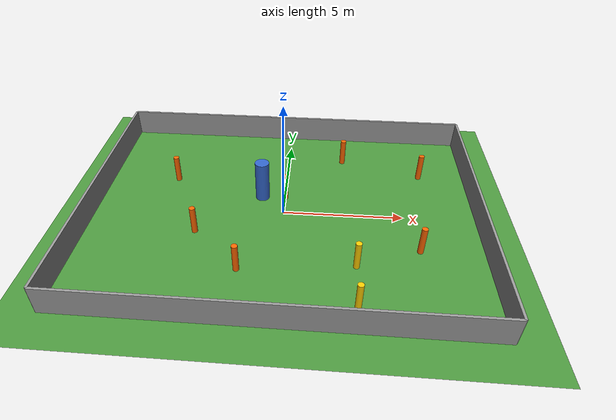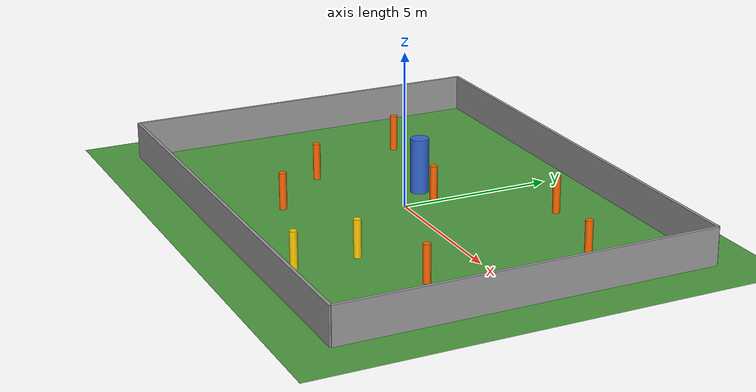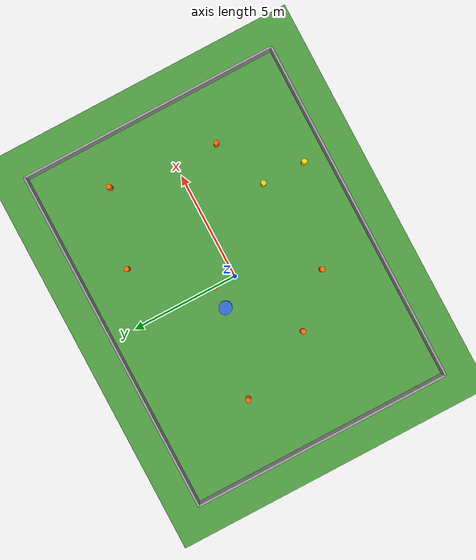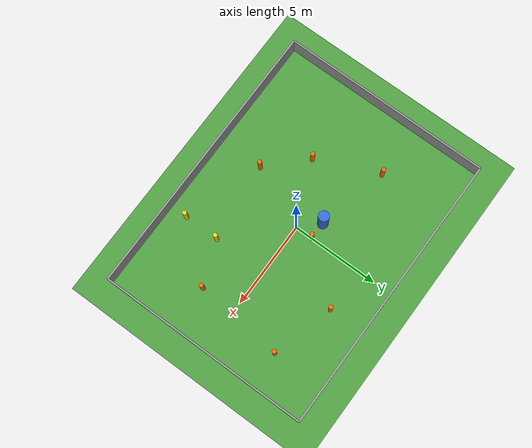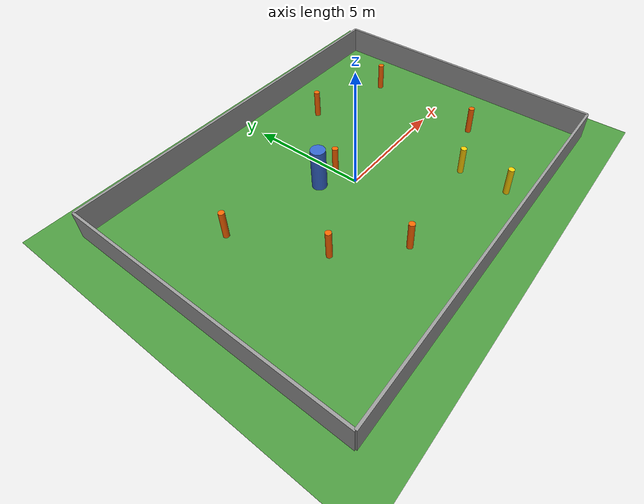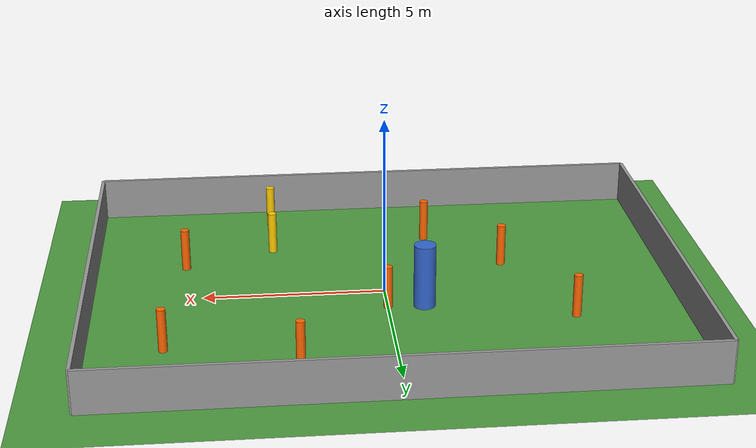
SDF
<?xml version="1.0"?>
<sdf version="1.6">
  <world name="test_small">

    <!-- Physics -->
    <physics type="ode">
      <real_time_update_rate>1000</real_time_update_rate>
      <max_step_size>0.002</max_step_size>
      <real_time_factor>0.0</real_time_factor>
      <ode>
        <solver>
          <type>quick</type>
          <iters>50</iters>
          <sor>1.3</sor>
        </solver>
      </ode>
    </physics>

    <!-- Sun light -->
    <light name="sun" type="directional">
      <cast_shadows>true</cast_shadows>
      <pose>0 0 10 0 0 0</pose>
      <diffuse>0.8 0.8 0.8 1</diffuse>
      <specular>0.2 0.2 0.2 1</specular>
      <direction>-0.5 0.1 -0.9</direction>
    </light>

    <!-- Ground plane -->
    <model name="ground_plane">
      <static>true</static>
      <link name="link">
        <collision name="collision">
          <geometry><plane><normal>0 0 1</normal><size>40 30</size></plane></geometry>
          <surface><friction><ode><mu>1</mu><mu2>1</mu2></ode></friction></surface>
        </collision>
        <visual name="visual">
          <geometry><plane><normal>0 0 1</normal><size>40 30</size></plane></geometry>
          <material><script><uri>file://media/materials/scripts/gazebo.material</uri><name>Gazebo/Grass</name></script></material>
        </visual>
      </link>
    </model>

    <!-- ===================== BOUNDARY WALLS ===================== -->
    <!-- Area: x=-8~8, y=-6~6  (16m x 12m, about 40% of original) -->
    <!-- Wall height=1.2m (above laser at z=0.975m), thickness=0.1m -->

    <!-- South wall (y=-6) -->
    <model name="wall_south">
      <static>true</static>
      <pose>0.0 -6.05 0.6 0 0 0</pose>
      <link name="link">
        <collision name="col"><geometry><box><size>16.1 0.1 1.2</size></box></geometry></collision>
        <visual name="vis"><geometry><box><size>16.1 0.1 1.2</size></box></geometry>
          <material><ambient>0.6 0.6 0.6 1</ambient></material></visual>
      </link>
    </model>

    <!-- North wall (y=6) -->
    <model name="wall_north">
      <static>true</static>
      <pose>0.0 6.05 0.6 0 0 0</pose>
      <link name="link">
        <collision name="col"><geometry><box><size>16.1 0.1 1.2</size></box></geometry></collision>
        <visual name="vis"><geometry><box><size>16.1 0.1 1.2</size></box></geometry>
          <material><ambient>0.6 0.6 0.6 1</ambient></material></visual>
      </link>
    </model>

    <!-- West wall (x=-8) -->
    <model name="wall_west">
      <static>true</static>
      <pose>-8.05 0.0 0.6 0 0 0</pose>
      <link name="link">
        <collision name="col"><geometry><box><size>0.1 12.1 1.2</size></box></geometry></collision>
        <visual name="vis"><geometry><box><size>0.1 12.1 1.2</size></box></geometry>
          <material><ambient>0.6 0.6 0.6 1</ambient></material></visual>
      </link>
    </model>

    <!-- East wall (x=8) -->
    <model name="wall_east">
      <static>true</static>
      <pose>8.05 0.0 0.6 0 0 0</pose>
      <link name="link">
        <collision name="col"><geometry><box><size>0.1 12.1 1.2</size></box></geometry></collision>
        <visual name="vis"><geometry><box><size>0.1 12.1 1.2</size></box></geometry>
          <material><ambient>0.6 0.6 0.6 1</ambient></material></visual>
      </link>
    </model>

    <!-- ===================== STATIC OBSTACLES (random cones) ===================== -->
    <!-- 7 cones scattered across the 16x12m area -->

    <model name="cone_1"><static>true</static><pose>-5.0 2.0 0.6 0 0 0</pose>
      <link name="link">
        <collision name="col"><geometry><cylinder><radius>0.12</radius><length>1.2</length></cylinder></geometry></collision>
        <visual name="vis"><geometry><cylinder><radius>0.12</radius><length>1.2</length></cylinder></geometry>
          <material><ambient>1.0 0.4 0.0 1</ambient></material></visual>
      </link>
    </model>

    <model name="cone_2"><static>true</static><pose>-1.5 -3.5 0.6 0 0 0</pose>
      <link name="link">
        <collision name="col"><geometry><cylinder><radius>0.12</radius><length>1.2</length></cylinder></geometry></collision>
        <visual name="vis"><geometry><cylinder><radius>0.12</radius><length>1.2</length></cylinder></geometry>
          <material><ambient>1.0 0.4 0.0 1</ambient></material></visual>
      </link>
    </model>

    <model name="cone_3"><static>true</static><pose>2.5 4.0 0.6 0 0 0</pose>
      <link name="link">
        <collision name="col"><geometry><cylinder><radius>0.12</radius><length>1.2</length></cylinder></geometry></collision>
        <visual name="vis"><geometry><cylinder><radius>0.12</radius><length>1.2</length></cylinder></geometry>
          <material><ambient>1.0 0.4 0.0 1</ambient></material></visual>
      </link>
    </model>

    <model name="cone_4"><static>true</static><pose>5.5 -2.0 0.6 0 0 0</pose>
      <link name="link">
        <collision name="col"><geometry><cylinder><radius>0.12</radius><length>1.2</length></cylinder></geometry></collision>
        <visual name="vis"><geometry><cylinder><radius>0.12</radius><length>1.2</length></cylinder></geometry>
          <material><ambient>1.0 0.4 0.0 1</ambient></material></visual>
      </link>
    </model>

    <model name="cone_5"><static>true</static><pose>0.0 1.0 0.6 0 0 0</pose>
      <link name="link">
        <collision name="col"><geometry><cylinder><radius>0.12</radius><length>1.2</length></cylinder></geometry></collision>
        <visual name="vis"><geometry><cylinder><radius>0.12</radius><length>1.2</length></cylinder></geometry>
          <material><ambient>1.0 0.4 0.0 1</ambient></material></visual>
      </link>
    </model>

    <model name="cone_6"><static>true</static><pose>-3.5 -1.5 0.6 0 0 0</pose>
      <link name="link">
        <collision name="col"><geometry><cylinder><radius>0.12</radius><length>1.2</length></cylinder></geometry></collision>
        <visual name="vis"><geometry><cylinder><radius>0.12</radius><length>1.2</length></cylinder></geometry>
          <material><ambient>1.0 0.4 0.0 1</ambient></material></visual>
      </link>
    </model>

    <model name="cone_7"><static>true</static><pose>6.0 3.0 0.6 0 0 0</pose>
      <link name="link">
        <collision name="col"><geometry><cylinder><radius>0.12</radius><length>1.2</length></cylinder></geometry></collision>
        <visual name="vis"><geometry><cylinder><radius>0.12</radius><length>1.2</length></cylinder></geometry>
          <material><ambient>1.0 0.4 0.0 1</ambient></material></visual>
      </link>
    </model>

    <!-- ===================== NARROW GATE (x=3, y=-4) ===================== -->
    <!-- Gate width = 2.0m -->
    <model name="gate1_L"><static>true</static><pose>3.0 -3.0 0.6 0 0 0</pose>
      <link name="link">
        <collision name="col"><geometry><cylinder><radius>0.12</radius><length>1.2</length></cylinder></geometry></collision>
        <visual name="vis"><geometry><cylinder><radius>0.12</radius><length>1.2</length></cylinder></geometry>
          <material><ambient>1.0 0.8 0.0 1</ambient></material></visual>
      </link>
    </model>
    <model name="gate1_R"><static>true</static><pose>3.0 -5.0 0.6 0 0 0</pose>
      <link name="link">
        <collision name="col"><geometry><cylinder><radius>0.12</radius><length>1.2</length></cylinder></geometry></collision>
        <visual name="vis"><geometry><cylinder><radius>0.12</radius><length>1.2</length></cylinder></geometry>
          <material><ambient>1.0 0.8 0.0 1</ambient></material></visual>
      </link>
    </model>

    <!-- ===================== DYNAMIC PEDESTRIAN ===================== -->
    <model name="pedestrian">
      <pose>-1.0 1.0 0.9 0 0 0</pose>
      <link name="link">
        <inertial><mass>70.0</mass><inertia><ixx>5</ixx><iyy>5</iyy><izz>2</izz><ixy>0</ixy><ixz>0</ixz><iyz>0</iyz></inertia></inertial>
        <collision name="col">
          <geometry><cylinder><radius>0.3</radius><length>1.8</length></cylinder></geometry>
        </collision>
        <visual name="vis">
          <geometry><cylinder><radius>0.3</radius><length>1.8</length></cylinder></geometry>
          <material><ambient>0.2 0.4 0.8 1</ambient></material>
        </visual>
      </link>
    </model>

  </world>
</sdf>
